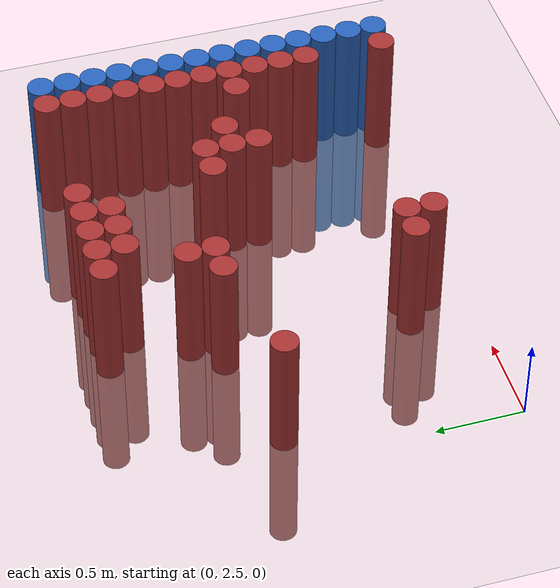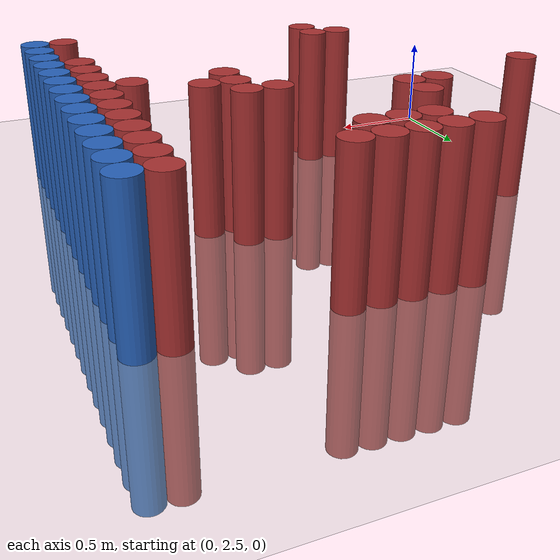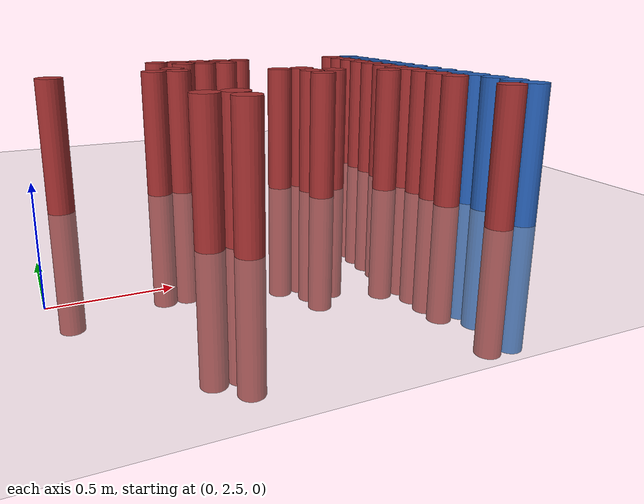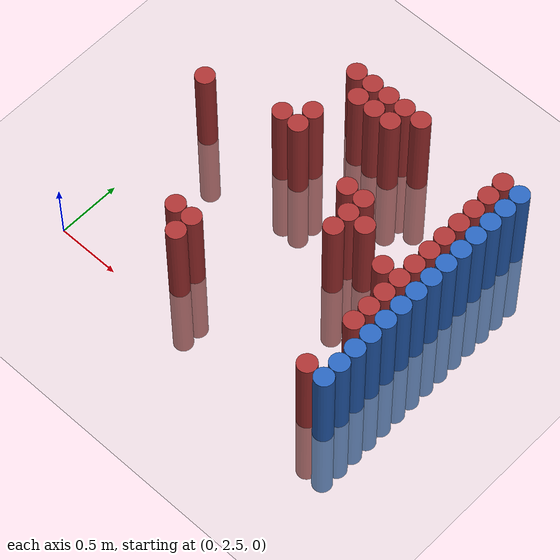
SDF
<sdf version="1.6">
 <world name="default">
  <model name="ground_plane">
   <static>1</static>
   <link name="link">
    <collision name="collision">
     <geometry><plane><normal>0 0 1</normal><size>100 100</size></plane></geometry>
     <surface><friction><ode><mu>100</mu><mu2>50</mu2></ode></friction></surface>
    </collision>
    <visual name="visual">
     <cast_shadows>0</cast_shadows>
     <geometry><plane><normal>0 0 1</normal><size>100 100</size></plane></geometry>
     <material>
      <script><uri>file://media/materials/scripts/gazebo.material</uri><name>Gazebo/Grey</name></script>
     </material>
    </visual>
   </link>
  </model>
  <model name="unit_cylinder_161">
   <static>1</static>
   <pose>0.175000 3.775000 0.000000 0.000000 0.000000 0.000000</pose>
   <link name="link">
    <inertial>
     <mass>1</mass>
     <inertia><ixx>0.145833</ixx><ixy>0</ixy><ixz>0</ixz><iyy>0.145833</iyy><iyz>0</iyz><izz>0.125</izz></inertia>
    </inertial>
    <collision name="collision">
     <geometry><cylinder><radius>0.075000</radius><length>1.5</length></cylinder></geometry>
    </collision>
    <visual name="visual">
     <geometry><cylinder><radius>0.075000</radius><length>1.5</length></cylinder></geometry>
     <material>
      <ambient>0.648000 0.192000 0.192000 1</ambient>
      <diffuse>0.648000 0.192000 0.192000 1</diffuse>
     </material>
     <material>
      <script><name>Gazebo/Grey</name><uri>file://media/materials/scripts/gazebo.material</uri></script>
     </material>
    </visual>
   </link>
  </model>
  <model name="unit_cylinder_177">
   <static>1</static>
   <pose>0.775000 2.875000 0.000000 0.000000 0.000000 0.000000</pose>
   <link name="link">
    <inertial>
     <mass>1</mass>
     <inertia><ixx>0.145833</ixx><ixy>0</ixy><ixz>0</ixz><iyy>0.145833</iyy><iyz>0</iyz><izz>0.125</izz></inertia>
    </inertial>
    <collision name="collision">
     <geometry><cylinder><radius>0.075000</radius><length>1.5</length></cylinder></geometry>
    </collision>
    <visual name="visual">
     <geometry><cylinder><radius>0.075000</radius><length>1.5</length></cylinder></geometry>
     <material>
      <ambient>0.648000 0.192000 0.192000 1</ambient>
      <diffuse>0.648000 0.192000 0.192000 1</diffuse>
     </material>
     <material>
      <script><name>Gazebo/Grey</name><uri>file://media/materials/scripts/gazebo.material</uri></script>
     </material>
    </visual>
   </link>
  </model>
  <model name="unit_cylinder_178">
   <static>1</static>
   <pose>0.775000 3.925000 0.000000 0.000000 0.000000 0.000000</pose>
   <link name="link">
    <inertial>
     <mass>1</mass>
     <inertia><ixx>0.145833</ixx><ixy>0</ixy><ixz>0</ixz><iyy>0.145833</iyy><iyz>0</iyz><izz>0.125</izz></inertia>
    </inertial>
    <collision name="collision">
     <geometry><cylinder><radius>0.075000</radius><length>1.5</length></cylinder></geometry>
    </collision>
    <visual name="visual">
     <geometry><cylinder><radius>0.075000</radius><length>1.5</length></cylinder></geometry>
     <material>
      <ambient>0.648000 0.192000 0.192000 1</ambient>
      <diffuse>0.648000 0.192000 0.192000 1</diffuse>
     </material>
     <material>
      <script><name>Gazebo/Grey</name><uri>file://media/materials/scripts/gazebo.material</uri></script>
     </material>
    </visual>
   </link>
  </model>
  <model name="unit_cylinder_180">
   <static>1</static>
   <pose>0.925000 2.725000 0.000000 0.000000 0.000000 0.000000</pose>
   <link name="link">
    <inertial>
     <mass>1</mass>
     <inertia><ixx>0.145833</ixx><ixy>0</ixy><ixz>0</ixz><iyy>0.145833</iyy><iyz>0</iyz><izz>0.125</izz></inertia>
    </inertial>
    <collision name="collision">
     <geometry><cylinder><radius>0.075000</radius><length>1.5</length></cylinder></geometry>
    </collision>
    <visual name="visual">
     <geometry><cylinder><radius>0.075000</radius><length>1.5</length></cylinder></geometry>
     <material>
      <ambient>0.648000 0.192000 0.192000 1</ambient>
      <diffuse>0.648000 0.192000 0.192000 1</diffuse>
     </material>
     <material>
      <script><name>Gazebo/Grey</name><uri>file://media/materials/scripts/gazebo.material</uri></script>
     </material>
    </visual>
   </link>
  </model>
  <model name="unit_cylinder_181">
   <static>1</static>
   <pose>0.925000 2.875000 0.000000 0.000000 0.000000 0.000000</pose>
   <link name="link">
    <inertial>
     <mass>1</mass>
     <inertia><ixx>0.145833</ixx><ixy>0</ixy><ixz>0</ixz><iyy>0.145833</iyy><iyz>0</iyz><izz>0.125</izz></inertia>
    </inertial>
    <collision name="collision">
     <geometry><cylinder><radius>0.075000</radius><length>1.5</length></cylinder></geometry>
    </collision>
    <visual name="visual">
     <geometry><cylinder><radius>0.075000</radius><length>1.5</length></cylinder></geometry>
     <material>
      <ambient>0.648000 0.192000 0.192000 1</ambient>
      <diffuse>0.648000 0.192000 0.192000 1</diffuse>
     </material>
     <material>
      <script><name>Gazebo/Grey</name><uri>file://media/materials/scripts/gazebo.material</uri></script>
     </material>
    </visual>
   </link>
  </model>
  <model name="unit_cylinder_182">
   <static>1</static>
   <pose>0.925000 3.925000 0.000000 0.000000 0.000000 0.000000</pose>
   <link name="link">
    <inertial>
     <mass>1</mass>
     <inertia><ixx>0.145833</ixx><ixy>0</ixy><ixz>0</ixz><iyy>0.145833</iyy><iyz>0</iyz><izz>0.125</izz></inertia>
    </inertial>
    <collision name="collision">
     <geometry><cylinder><radius>0.075000</radius><length>1.5</length></cylinder></geometry>
    </collision>
    <visual name="visual">
     <geometry><cylinder><radius>0.075000</radius><length>1.5</length></cylinder></geometry>
     <material>
      <ambient>0.648000 0.192000 0.192000 1</ambient>
      <diffuse>0.648000 0.192000 0.192000 1</diffuse>
     </material>
     <material>
      <script><name>Gazebo/Grey</name><uri>file://media/materials/scripts/gazebo.material</uri></script>
     </material>
    </visual>
   </link>
  </model>
  <model name="unit_cylinder_183">
   <static>1</static>
   <pose>0.925000 4.075000 0.000000 0.000000 0.000000 0.000000</pose>
   <link name="link">
    <inertial>
     <mass>1</mass>
     <inertia><ixx>0.145833</ixx><ixy>0</ixy><ixz>0</ixz><iyy>0.145833</iyy><iyz>0</iyz><izz>0.125</izz></inertia>
    </inertial>
    <collision name="collision">
     <geometry><cylinder><radius>0.075000</radius><length>1.5</length></cylinder></geometry>
    </collision>
    <visual name="visual">
     <geometry><cylinder><radius>0.075000</radius><length>1.5</length></cylinder></geometry>
     <material>
      <ambient>0.648000 0.192000 0.192000 1</ambient>
      <diffuse>0.648000 0.192000 0.192000 1</diffuse>
     </material>
     <material>
      <script><name>Gazebo/Grey</name><uri>file://media/materials/scripts/gazebo.material</uri></script>
     </material>
    </visual>
   </link>
  </model>
  <model name="unit_cylinder_184">
   <static>1</static>
   <pose>0.925000 4.525000 0.000000 0.000000 0.000000 0.000000</pose>
   <link name="link">
    <inertial>
     <mass>1</mass>
     <inertia><ixx>0.145833</ixx><ixy>0</ixy><ixz>0</ixz><iyy>0.145833</iyy><iyz>0</iyz><izz>0.125</izz></inertia>
    </inertial>
    <collision name="collision">
     <geometry><cylinder><radius>0.075000</radius><length>1.5</length></cylinder></geometry>
    </collision>
    <visual name="visual">
     <geometry><cylinder><radius>0.075000</radius><length>1.5</length></cylinder></geometry>
     <material>
      <ambient>0.648000 0.192000 0.192000 1</ambient>
      <diffuse>0.648000 0.192000 0.192000 1</diffuse>
     </material>
     <material>
      <script><name>Gazebo/Grey</name><uri>file://media/materials/scripts/gazebo.material</uri></script>
     </material>
    </visual>
   </link>
  </model>
  <model name="unit_cylinder_185">
   <static>1</static>
   <pose>1.075000 4.375000 0.000000 0.000000 0.000000 0.000000</pose>
   <link name="link">
    <inertial>
     <mass>1</mass>
     <inertia><ixx>0.145833</ixx><ixy>0</ixy><ixz>0</ixz><iyy>0.145833</iyy><iyz>0</iyz><izz>0.125</izz></inertia>
    </inertial>
    <collision name="collision">
     <geometry><cylinder><radius>0.075000</radius><length>1.5</length></cylinder></geometry>
    </collision>
    <visual name="visual">
     <geometry><cylinder><radius>0.075000</radius><length>1.5</length></cylinder></geometry>
     <material>
      <ambient>0.648000 0.192000 0.192000 1</ambient>
      <diffuse>0.648000 0.192000 0.192000 1</diffuse>
     </material>
     <material>
      <script><name>Gazebo/Grey</name><uri>file://media/materials/scripts/gazebo.material</uri></script>
     </material>
    </visual>
   </link>
  </model>
  <model name="unit_cylinder_186">
   <static>1</static>
   <pose>1.075000 4.525000 0.000000 0.000000 0.000000 0.000000</pose>
   <link name="link">
    <inertial>
     <mass>1</mass>
     <inertia><ixx>0.145833</ixx><ixy>0</ixy><ixz>0</ixz><iyy>0.145833</iyy><iyz>0</iyz><izz>0.125</izz></inertia>
    </inertial>
    <collision name="collision">
     <geometry><cylinder><radius>0.075000</radius><length>1.5</length></cylinder></geometry>
    </collision>
    <visual name="visual">
     <geometry><cylinder><radius>0.075000</radius><length>1.5</length></cylinder></geometry>
     <material>
      <ambient>0.648000 0.192000 0.192000 1</ambient>
      <diffuse>0.648000 0.192000 0.192000 1</diffuse>
     </material>
     <material>
      <script><name>Gazebo/Grey</name><uri>file://media/materials/scripts/gazebo.material</uri></script>
     </material>
    </visual>
   </link>
  </model>
  <model name="unit_cylinder_187">
   <static>1</static>
   <pose>1.225000 4.375000 0.000000 0.000000 0.000000 0.000000</pose>
   <link name="link">
    <inertial>
     <mass>1</mass>
     <inertia><ixx>0.145833</ixx><ixy>0</ixy><ixz>0</ixz><iyy>0.145833</iyy><iyz>0</iyz><izz>0.125</izz></inertia>
    </inertial>
    <collision name="collision">
     <geometry><cylinder><radius>0.075000</radius><length>1.5</length></cylinder></geometry>
    </collision>
    <visual name="visual">
     <geometry><cylinder><radius>0.075000</radius><length>1.5</length></cylinder></geometry>
     <material>
      <ambient>0.648000 0.192000 0.192000 1</ambient>
      <diffuse>0.648000 0.192000 0.192000 1</diffuse>
     </material>
     <material>
      <script><name>Gazebo/Grey</name><uri>file://media/materials/scripts/gazebo.material</uri></script>
     </material>
    </visual>
   </link>
  </model>
  <model name="unit_cylinder_188">
   <static>1</static>
   <pose>1.225000 4.525000 0.000000 0.000000 0.000000 0.000000</pose>
   <link name="link">
    <inertial>
     <mass>1</mass>
     <inertia><ixx>0.145833</ixx><ixy>0</ixy><ixz>0</ixz><iyy>0.145833</iyy><iyz>0</iyz><izz>0.125</izz></inertia>
    </inertial>
    <collision name="collision">
     <geometry><cylinder><radius>0.075000</radius><length>1.5</length></cylinder></geometry>
    </collision>
    <visual name="visual">
     <geometry><cylinder><radius>0.075000</radius><length>1.5</length></cylinder></geometry>
     <material>
      <ambient>0.648000 0.192000 0.192000 1</ambient>
      <diffuse>0.648000 0.192000 0.192000 1</diffuse>
     </material>
     <material>
      <script><name>Gazebo/Grey</name><uri>file://media/materials/scripts/gazebo.material</uri></script>
     </material>
    </visual>
   </link>
  </model>
  <model name="unit_cylinder_189">
   <static>1</static>
   <pose>1.375000 4.375000 0.000000 0.000000 0.000000 0.000000</pose>
   <link name="link">
    <inertial>
     <mass>1</mass>
     <inertia><ixx>0.145833</ixx><ixy>0</ixy><ixz>0</ixz><iyy>0.145833</iyy><iyz>0</iyz><izz>0.125</izz></inertia>
    </inertial>
    <collision name="collision">
     <geometry><cylinder><radius>0.075000</radius><length>1.5</length></cylinder></geometry>
    </collision>
    <visual name="visual">
     <geometry><cylinder><radius>0.075000</radius><length>1.5</length></cylinder></geometry>
     <material>
      <ambient>0.648000 0.192000 0.192000 1</ambient>
      <diffuse>0.648000 0.192000 0.192000 1</diffuse>
     </material>
     <material>
      <script><name>Gazebo/Grey</name><uri>file://media/materials/scripts/gazebo.material</uri></script>
     </material>
    </visual>
   </link>
  </model>
  <model name="unit_cylinder_190">
   <static>1</static>
   <pose>1.375000 4.525000 0.000000 0.000000 0.000000 0.000000</pose>
   <link name="link">
    <inertial>
     <mass>1</mass>
     <inertia><ixx>0.145833</ixx><ixy>0</ixy><ixz>0</ixz><iyy>0.145833</iyy><iyz>0</iyz><izz>0.125</izz></inertia>
    </inertial>
    <collision name="collision">
     <geometry><cylinder><radius>0.075000</radius><length>1.5</length></cylinder></geometry>
    </collision>
    <visual name="visual">
     <geometry><cylinder><radius>0.075000</radius><length>1.5</length></cylinder></geometry>
     <material>
      <ambient>0.648000 0.192000 0.192000 1</ambient>
      <diffuse>0.648000 0.192000 0.192000 1</diffuse>
     </material>
     <material>
      <script><name>Gazebo/Grey</name><uri>file://media/materials/scripts/gazebo.material</uri></script>
     </material>
    </visual>
   </link>
  </model>
  <model name="unit_cylinder_192">
   <static>1</static>
   <pose>1.525000 3.775000 0.000000 0.000000 0.000000 0.000000</pose>
   <link name="link">
    <inertial>
     <mass>1</mass>
     <inertia><ixx>0.145833</ixx><ixy>0</ixy><ixz>0</ixz><iyy>0.145833</iyy><iyz>0</iyz><izz>0.125</izz></inertia>
    </inertial>
    <collision name="collision">
     <geometry><cylinder><radius>0.075000</radius><length>1.5</length></cylinder></geometry>
    </collision>
    <visual name="visual">
     <geometry><cylinder><radius>0.075000</radius><length>1.5</length></cylinder></geometry>
     <material>
      <ambient>0.648000 0.192000 0.192000 1</ambient>
      <diffuse>0.648000 0.192000 0.192000 1</diffuse>
     </material>
     <material>
      <script><name>Gazebo/Grey</name><uri>file://media/materials/scripts/gazebo.material</uri></script>
     </material>
    </visual>
   </link>
  </model>
  <model name="unit_cylinder_193">
   <static>1</static>
   <pose>1.525000 4.525000 0.000000 0.000000 0.000000 0.000000</pose>
   <link name="link">
    <inertial>
     <mass>1</mass>
     <inertia><ixx>0.145833</ixx><ixy>0</ixy><ixz>0</ixz><iyy>0.145833</iyy><iyz>0</iyz><izz>0.125</izz></inertia>
    </inertial>
    <collision name="collision">
     <geometry><cylinder><radius>0.075000</radius><length>1.5</length></cylinder></geometry>
    </collision>
    <visual name="visual">
     <geometry><cylinder><radius>0.075000</radius><length>1.5</length></cylinder></geometry>
     <material>
      <ambient>0.648000 0.192000 0.192000 1</ambient>
      <diffuse>0.648000 0.192000 0.192000 1</diffuse>
     </material>
     <material>
      <script><name>Gazebo/Grey</name><uri>file://media/materials/scripts/gazebo.material</uri></script>
     </material>
    </visual>
   </link>
  </model>
  <model name="unit_cylinder_199">
   <static>1</static>
   <pose>1.675000 3.475000 0.000000 0.000000 0.000000 0.000000</pose>
   <link name="link">
    <inertial>
     <mass>1</mass>
     <inertia><ixx>0.145833</ixx><ixy>0</ixy><ixz>0</ixz><iyy>0.145833</iyy><iyz>0</iyz><izz>0.125</izz></inertia>
    </inertial>
    <collision name="collision">
     <geometry><cylinder><radius>0.075000</radius><length>1.5</length></cylinder></geometry>
    </collision>
    <visual name="visual">
     <geometry><cylinder><radius>0.075000</radius><length>1.5</length></cylinder></geometry>
     <material>
      <ambient>0.648000 0.192000 0.192000 1</ambient>
      <diffuse>0.648000 0.192000 0.192000 1</diffuse>
     </material>
     <material>
      <script><name>Gazebo/Grey</name><uri>file://media/materials/scripts/gazebo.material</uri></script>
     </material>
    </visual>
   </link>
  </model>
  <model name="unit_cylinder_200">
   <static>1</static>
   <pose>1.675000 3.625000 0.000000 0.000000 0.000000 0.000000</pose>
   <link name="link">
    <inertial>
     <mass>1</mass>
     <inertia><ixx>0.145833</ixx><ixy>0</ixy><ixz>0</ixz><iyy>0.145833</iyy><iyz>0</iyz><izz>0.125</izz></inertia>
    </inertial>
    <collision name="collision">
     <geometry><cylinder><radius>0.075000</radius><length>1.5</length></cylinder></geometry>
    </collision>
    <visual name="visual">
     <geometry><cylinder><radius>0.075000</radius><length>1.5</length></cylinder></geometry>
     <material>
      <ambient>0.648000 0.192000 0.192000 1</ambient>
      <diffuse>0.648000 0.192000 0.192000 1</diffuse>
     </material>
     <material>
      <script><name>Gazebo/Grey</name><uri>file://media/materials/scripts/gazebo.material</uri></script>
     </material>
    </visual>
   </link>
  </model>
  <model name="unit_cylinder_201">
   <static>1</static>
   <pose>1.675000 3.775000 0.000000 0.000000 0.000000 0.000000</pose>
   <link name="link">
    <inertial>
     <mass>1</mass>
     <inertia><ixx>0.145833</ixx><ixy>0</ixy><ixz>0</ixz><iyy>0.145833</iyy><iyz>0</iyz><izz>0.125</izz></inertia>
    </inertial>
    <collision name="collision">
     <geometry><cylinder><radius>0.075000</radius><length>1.5</length></cylinder></geometry>
    </collision>
    <visual name="visual">
     <geometry><cylinder><radius>0.075000</radius><length>1.5</length></cylinder></geometry>
     <material>
      <ambient>0.648000 0.192000 0.192000 1</ambient>
      <diffuse>0.648000 0.192000 0.192000 1</diffuse>
     </material>
     <material>
      <script><name>Gazebo/Grey</name><uri>file://media/materials/scripts/gazebo.material</uri></script>
     </material>
    </visual>
   </link>
  </model>
  <model name="unit_cylinder_211">
   <static>1</static>
   <pose>1.825000 3.625000 0.000000 0.000000 0.000000 0.000000</pose>
   <link name="link">
    <inertial>
     <mass>1</mass>
     <inertia><ixx>0.145833</ixx><ixy>0</ixy><ixz>0</ixz><iyy>0.145833</iyy><iyz>0</iyz><izz>0.125</izz></inertia>
    </inertial>
    <collision name="collision">
     <geometry><cylinder><radius>0.075000</radius><length>1.5</length></cylinder></geometry>
    </collision>
    <visual name="visual">
     <geometry><cylinder><radius>0.075000</radius><length>1.5</length></cylinder></geometry>
     <material>
      <ambient>0.648000 0.192000 0.192000 1</ambient>
      <diffuse>0.648000 0.192000 0.192000 1</diffuse>
     </material>
     <material>
      <script><name>Gazebo/Grey</name><uri>file://media/materials/scripts/gazebo.material</uri></script>
     </material>
    </visual>
   </link>
  </model>
  <model name="unit_cylinder_226">
   <static>1</static>
   <pose>2.125000 3.475000 0.000000 0.000000 0.000000 0.000000</pose>
   <link name="link">
    <inertial>
     <mass>1</mass>
     <inertia><ixx>0.145833</ixx><ixy>0</ixy><ixz>0</ixz><iyy>0.145833</iyy><iyz>0</iyz><izz>0.125</izz></inertia>
    </inertial>
    <collision name="collision">
     <geometry><cylinder><radius>0.075000</radius><length>1.5</length></cylinder></geometry>
    </collision>
    <visual name="visual">
     <geometry><cylinder><radius>0.075000</radius><length>1.5</length></cylinder></geometry>
     <material>
      <ambient>0.648000 0.192000 0.192000 1</ambient>
      <diffuse>0.648000 0.192000 0.192000 1</diffuse>
     </material>
     <material>
      <script><name>Gazebo/Grey</name><uri>file://media/materials/scripts/gazebo.material</uri></script>
     </material>
    </visual>
   </link>
  </model>
  <model name="unit_cylinder_236">
   <static>1</static>
   <pose>2.275000 2.575000 0.000000 0.000000 0.000000 0.000000</pose>
   <link name="link">
    <inertial>
     <mass>1</mass>
     <inertia><ixx>0.145833</ixx><ixy>0</ixy><ixz>0</ixz><iyy>0.145833</iyy><iyz>0</iyz><izz>0.125</izz></inertia>
    </inertial>
    <collision name="collision">
     <geometry><cylinder><radius>0.075000</radius><length>1.5</length></cylinder></geometry>
    </collision>
    <visual name="visual">
     <geometry><cylinder><radius>0.075000</radius><length>1.5</length></cylinder></geometry>
     <material>
      <ambient>0.648000 0.192000 0.192000 1</ambient>
      <diffuse>0.648000 0.192000 0.192000 1</diffuse>
     </material>
     <material>
      <script><name>Gazebo/Grey</name><uri>file://media/materials/scripts/gazebo.material</uri></script>
     </material>
    </visual>
   </link>
  </model>
  <model name="unit_cylinder_237">
   <static>1</static>
   <pose>2.275000 3.025000 0.000000 0.000000 0.000000 0.000000</pose>
   <link name="link">
    <inertial>
     <mass>1</mass>
     <inertia><ixx>0.145833</ixx><ixy>0</ixy><ixz>0</ixz><iyy>0.145833</iyy><iyz>0</iyz><izz>0.125</izz></inertia>
    </inertial>
    <collision name="collision">
     <geometry><cylinder><radius>0.075000</radius><length>1.5</length></cylinder></geometry>
    </collision>
    <visual name="visual">
     <geometry><cylinder><radius>0.075000</radius><length>1.5</length></cylinder></geometry>
     <material>
      <ambient>0.648000 0.192000 0.192000 1</ambient>
      <diffuse>0.648000 0.192000 0.192000 1</diffuse>
     </material>
     <material>
      <script><name>Gazebo/Grey</name><uri>file://media/materials/scripts/gazebo.material</uri></script>
     </material>
    </visual>
   </link>
  </model>
  <model name="unit_cylinder_238">
   <static>1</static>
   <pose>2.275000 3.175000 0.000000 0.000000 0.000000 0.000000</pose>
   <link name="link">
    <inertial>
     <mass>1</mass>
     <inertia><ixx>0.145833</ixx><ixy>0</ixy><ixz>0</ixz><iyy>0.145833</iyy><iyz>0</iyz><izz>0.125</izz></inertia>
    </inertial>
    <collision name="collision">
     <geometry><cylinder><radius>0.075000</radius><length>1.5</length></cylinder></geometry>
    </collision>
    <visual name="visual">
     <geometry><cylinder><radius>0.075000</radius><length>1.5</length></cylinder></geometry>
     <material>
      <ambient>0.648000 0.192000 0.192000 1</ambient>
      <diffuse>0.648000 0.192000 0.192000 1</diffuse>
     </material>
     <material>
      <script><name>Gazebo/Grey</name><uri>file://media/materials/scripts/gazebo.material</uri></script>
     </material>
    </visual>
   </link>
  </model>
  <model name="unit_cylinder_239">
   <static>1</static>
   <pose>2.275000 3.325000 0.000000 0.000000 0.000000 0.000000</pose>
   <link name="link">
    <inertial>
     <mass>1</mass>
     <inertia><ixx>0.145833</ixx><ixy>0</ixy><ixz>0</ixz><iyy>0.145833</iyy><iyz>0</iyz><izz>0.125</izz></inertia>
    </inertial>
    <collision name="collision">
     <geometry><cylinder><radius>0.075000</radius><length>1.5</length></cylinder></geometry>
    </collision>
    <visual name="visual">
     <geometry><cylinder><radius>0.075000</radius><length>1.5</length></cylinder></geometry>
     <material>
      <ambient>0.648000 0.192000 0.192000 1</ambient>
      <diffuse>0.648000 0.192000 0.192000 1</diffuse>
     </material>
     <material>
      <script><name>Gazebo/Grey</name><uri>file://media/materials/scripts/gazebo.material</uri></script>
     </material>
    </visual>
   </link>
  </model>
  <model name="unit_cylinder_240">
   <static>1</static>
   <pose>2.275000 3.475000 0.000000 0.000000 0.000000 0.000000</pose>
   <link name="link">
    <inertial>
     <mass>1</mass>
     <inertia><ixx>0.145833</ixx><ixy>0</ixy><ixz>0</ixz><iyy>0.145833</iyy><iyz>0</iyz><izz>0.125</izz></inertia>
    </inertial>
    <collision name="collision">
     <geometry><cylinder><radius>0.075000</radius><length>1.5</length></cylinder></geometry>
    </collision>
    <visual name="visual">
     <geometry><cylinder><radius>0.075000</radius><length>1.5</length></cylinder></geometry>
     <material>
      <ambient>0.648000 0.192000 0.192000 1</ambient>
      <diffuse>0.648000 0.192000 0.192000 1</diffuse>
     </material>
     <material>
      <script><name>Gazebo/Grey</name><uri>file://media/materials/scripts/gazebo.material</uri></script>
     </material>
    </visual>
   </link>
  </model>
  <model name="unit_cylinder_241">
   <static>1</static>
   <pose>2.275000 3.625000 0.000000 0.000000 0.000000 0.000000</pose>
   <link name="link">
    <inertial>
     <mass>1</mass>
     <inertia><ixx>0.145833</ixx><ixy>0</ixy><ixz>0</ixz><iyy>0.145833</iyy><iyz>0</iyz><izz>0.125</izz></inertia>
    </inertial>
    <collision name="collision">
     <geometry><cylinder><radius>0.075000</radius><length>1.5</length></cylinder></geometry>
    </collision>
    <visual name="visual">
     <geometry><cylinder><radius>0.075000</radius><length>1.5</length></cylinder></geometry>
     <material>
      <ambient>0.648000 0.192000 0.192000 1</ambient>
      <diffuse>0.648000 0.192000 0.192000 1</diffuse>
     </material>
     <material>
      <script><name>Gazebo/Grey</name><uri>file://media/materials/scripts/gazebo.material</uri></script>
     </material>
    </visual>
   </link>
  </model>
  <model name="unit_cylinder_242">
   <static>1</static>
   <pose>2.275000 3.775000 0.000000 0.000000 0.000000 0.000000</pose>
   <link name="link">
    <inertial>
     <mass>1</mass>
     <inertia><ixx>0.145833</ixx><ixy>0</ixy><ixz>0</ixz><iyy>0.145833</iyy><iyz>0</iyz><izz>0.125</izz></inertia>
    </inertial>
    <collision name="collision">
     <geometry><cylinder><radius>0.075000</radius><length>1.5</length></cylinder></geometry>
    </collision>
    <visual name="visual">
     <geometry><cylinder><radius>0.075000</radius><length>1.5</length></cylinder></geometry>
     <material>
      <ambient>0.648000 0.192000 0.192000 1</ambient>
      <diffuse>0.648000 0.192000 0.192000 1</diffuse>
     </material>
     <material>
      <script><name>Gazebo/Grey</name><uri>file://media/materials/scripts/gazebo.material</uri></script>
     </material>
    </visual>
   </link>
  </model>
  <model name="unit_cylinder_243">
   <static>1</static>
   <pose>2.275000 3.925000 0.000000 0.000000 0.000000 0.000000</pose>
   <link name="link">
    <inertial>
     <mass>1</mass>
     <inertia><ixx>0.145833</ixx><ixy>0</ixy><ixz>0</ixz><iyy>0.145833</iyy><iyz>0</iyz><izz>0.125</izz></inertia>
    </inertial>
    <collision name="collision">
     <geometry><cylinder><radius>0.075000</radius><length>1.5</length></cylinder></geometry>
    </collision>
    <visual name="visual">
     <geometry><cylinder><radius>0.075000</radius><length>1.5</length></cylinder></geometry>
     <material>
      <ambient>0.648000 0.192000 0.192000 1</ambient>
      <diffuse>0.648000 0.192000 0.192000 1</diffuse>
     </material>
     <material>
      <script><name>Gazebo/Grey</name><uri>file://media/materials/scripts/gazebo.material</uri></script>
     </material>
    </visual>
   </link>
  </model>
  <model name="unit_cylinder_244">
   <static>1</static>
   <pose>2.275000 4.075000 0.000000 0.000000 0.000000 0.000000</pose>
   <link name="link">
    <inertial>
     <mass>1</mass>
     <inertia><ixx>0.145833</ixx><ixy>0</ixy><ixz>0</ixz><iyy>0.145833</iyy><iyz>0</iyz><izz>0.125</izz></inertia>
    </inertial>
    <collision name="collision">
     <geometry><cylinder><radius>0.075000</radius><length>1.5</length></cylinder></geometry>
    </collision>
    <visual name="visual">
     <geometry><cylinder><radius>0.075000</radius><length>1.5</length></cylinder></geometry>
     <material>
      <ambient>0.648000 0.192000 0.192000 1</ambient>
      <diffuse>0.648000 0.192000 0.192000 1</diffuse>
     </material>
     <material>
      <script><name>Gazebo/Grey</name><uri>file://media/materials/scripts/gazebo.material</uri></script>
     </material>
    </visual>
   </link>
  </model>
  <model name="unit_cylinder_245">
   <static>1</static>
   <pose>2.275000 4.225000 0.000000 0.000000 0.000000 0.000000</pose>
   <link name="link">
    <inertial>
     <mass>1</mass>
     <inertia><ixx>0.145833</ixx><ixy>0</ixy><ixz>0</ixz><iyy>0.145833</iyy><iyz>0</iyz><izz>0.125</izz></inertia>
    </inertial>
    <collision name="collision">
     <geometry><cylinder><radius>0.075000</radius><length>1.5</length></cylinder></geometry>
    </collision>
    <visual name="visual">
     <geometry><cylinder><radius>0.075000</radius><length>1.5</length></cylinder></geometry>
     <material>
      <ambient>0.648000 0.192000 0.192000 1</ambient>
      <diffuse>0.648000 0.192000 0.192000 1</diffuse>
     </material>
     <material>
      <script><name>Gazebo/Grey</name><uri>file://media/materials/scripts/gazebo.material</uri></script>
     </material>
    </visual>
   </link>
  </model>
  <model name="unit_cylinder_246">
   <static>1</static>
   <pose>2.275000 4.375000 0.000000 0.000000 0.000000 0.000000</pose>
   <link name="link">
    <inertial>
     <mass>1</mass>
     <inertia><ixx>0.145833</ixx><ixy>0</ixy><ixz>0</ixz><iyy>0.145833</iyy><iyz>0</iyz><izz>0.125</izz></inertia>
    </inertial>
    <collision name="collision">
     <geometry><cylinder><radius>0.075000</radius><length>1.5</length></cylinder></geometry>
    </collision>
    <visual name="visual">
     <geometry><cylinder><radius>0.075000</radius><length>1.5</length></cylinder></geometry>
     <material>
      <ambient>0.648000 0.192000 0.192000 1</ambient>
      <diffuse>0.648000 0.192000 0.192000 1</diffuse>
     </material>
     <material>
      <script><name>Gazebo/Grey</name><uri>file://media/materials/scripts/gazebo.material</uri></script>
     </material>
    </visual>
   </link>
  </model>
  <model name="unit_cylinder_247">
   <static>1</static>
   <pose>2.275000 4.525000 0.000000 0.000000 0.000000 0.000000</pose>
   <link name="link">
    <inertial>
     <mass>1</mass>
     <inertia><ixx>0.145833</ixx><ixy>0</ixy><ixz>0</ixz><iyy>0.145833</iyy><iyz>0</iyz><izz>0.125</izz></inertia>
    </inertial>
    <collision name="collision">
     <geometry><cylinder><radius>0.075000</radius><length>1.5</length></cylinder></geometry>
    </collision>
    <visual name="visual">
     <geometry><cylinder><radius>0.075000</radius><length>1.5</length></cylinder></geometry>
     <material>
      <ambient>0.648000 0.192000 0.192000 1</ambient>
      <diffuse>0.648000 0.192000 0.192000 1</diffuse>
     </material>
     <material>
      <script><name>Gazebo/Grey</name><uri>file://media/materials/scripts/gazebo.material</uri></script>
     </material>
    </visual>
   </link>
  </model>
  <model name="unit_cylinder_264">
   <static>1</static>
   <pose>2.425000 2.575000 0.000000 0.000000 0.000000 0.000000</pose>
   <link name="link">
    <inertial>
     <mass>1</mass>
     <inertia><ixx>0.145833</ixx><ixy>0</ixy><ixz>0</ixz><iyy>0.145833</iyy><iyz>0</iyz><izz>0.125</izz></inertia>
    </inertial>
    <collision name="collision">
     <geometry><cylinder><radius>0.075000</radius><length>1.5</length></cylinder></geometry>
    </collision>
    <visual name="visual">
     <geometry><cylinder><radius>0.075000</radius><length>1.5</length></cylinder></geometry>
     <material>
      <ambient>0.152000 0.379000 0.720000 1</ambient>
      <diffuse>0.152000 0.379000 0.720000 1</diffuse>
     </material>
     <material>
      <script><name>Gazebo/Grey</name><uri>file://media/materials/scripts/gazebo.material</uri></script>
     </material>
    </visual>
   </link>
  </model>
  <model name="unit_cylinder_265">
   <static>1</static>
   <pose>2.425000 2.725000 0.000000 0.000000 0.000000 0.000000</pose>
   <link name="link">
    <inertial>
     <mass>1</mass>
     <inertia><ixx>0.145833</ixx><ixy>0</ixy><ixz>0</ixz><iyy>0.145833</iyy><iyz>0</iyz><izz>0.125</izz></inertia>
    </inertial>
    <collision name="collision">
     <geometry><cylinder><radius>0.075000</radius><length>1.5</length></cylinder></geometry>
    </collision>
    <visual name="visual">
     <geometry><cylinder><radius>0.075000</radius><length>1.5</length></cylinder></geometry>
     <material>
      <ambient>0.152000 0.379000 0.720000 1</ambient>
      <diffuse>0.152000 0.379000 0.720000 1</diffuse>
     </material>
     <material>
      <script><name>Gazebo/Grey</name><uri>file://media/materials/scripts/gazebo.material</uri></script>
     </material>
    </visual>
   </link>
  </model>
  <model name="unit_cylinder_266">
   <static>1</static>
   <pose>2.425000 2.875000 0.000000 0.000000 0.000000 0.000000</pose>
   <link name="link">
    <inertial>
     <mass>1</mass>
     <inertia><ixx>0.145833</ixx><ixy>0</ixy><ixz>0</ixz><iyy>0.145833</iyy><iyz>0</iyz><izz>0.125</izz></inertia>
    </inertial>
    <collision name="collision">
     <geometry><cylinder><radius>0.075000</radius><length>1.5</length></cylinder></geometry>
    </collision>
    <visual name="visual">
     <geometry><cylinder><radius>0.075000</radius><length>1.5</length></cylinder></geometry>
     <material>
      <ambient>0.152000 0.379000 0.720000 1</ambient>
      <diffuse>0.152000 0.379000 0.720000 1</diffuse>
     </material>
     <material>
      <script><name>Gazebo/Grey</name><uri>file://media/materials/scripts/gazebo.material</uri></script>
     </material>
    </visual>
   </link>
  </model>
  <model name="unit_cylinder_267">
   <static>1</static>
   <pose>2.425000 3.025000 0.000000 0.000000 0.000000 0.000000</pose>
   <link name="link">
    <inertial>
     <mass>1</mass>
     <inertia><ixx>0.145833</ixx><ixy>0</ixy><ixz>0</ixz><iyy>0.145833</iyy><iyz>0</iyz><izz>0.125</izz></inertia>
    </inertial>
    <collision name="collision">
     <geometry><cylinder><radius>0.075000</radius><length>1.5</length></cylinder></geometry>
    </collision>
    <visual name="visual">
     <geometry><cylinder><radius>0.075000</radius><length>1.5</length></cylinder></geometry>
     <material>
      <ambient>0.152000 0.379000 0.720000 1</ambient>
      <diffuse>0.152000 0.379000 0.720000 1</diffuse>
     </material>
     <material>
      <script><name>Gazebo/Grey</name><uri>file://media/materials/scripts/gazebo.material</uri></script>
     </material>
    </visual>
   </link>
  </model>
  <model name="unit_cylinder_268">
   <static>1</static>
   <pose>2.425000 3.175000 0.000000 0.000000 0.000000 0.000000</pose>
   <link name="link">
    <inertial>
     <mass>1</mass>
     <inertia><ixx>0.145833</ixx><ixy>0</ixy><ixz>0</ixz><iyy>0.145833</iyy><iyz>0</iyz><izz>0.125</izz></inertia>
    </inertial>
    <collision name="collision">
     <geometry><cylinder><radius>0.075000</radius><length>1.5</length></cylinder></geometry>
    </collision>
    <visual name="visual">
     <geometry><cylinder><radius>0.075000</radius><length>1.5</length></cylinder></geometry>
     <material>
      <ambient>0.152000 0.379000 0.720000 1</ambient>
      <diffuse>0.152000 0.379000 0.720000 1</diffuse>
     </material>
     <material>
      <script><name>Gazebo/Grey</name><uri>file://media/materials/scripts/gazebo.material</uri></script>
     </material>
    </visual>
   </link>
  </model>
  <model name="unit_cylinder_269">
   <static>1</static>
   <pose>2.425000 3.325000 0.000000 0.000000 0.000000 0.000000</pose>
   <link name="link">
    <inertial>
     <mass>1</mass>
     <inertia><ixx>0.145833</ixx><ixy>0</ixy><ixz>0</ixz><iyy>0.145833</iyy><iyz>0</iyz><izz>0.125</izz></inertia>
    </inertial>
    <collision name="collision">
     <geometry><cylinder><radius>0.075000</radius><length>1.5</length></cylinder></geometry>
    </collision>
    <visual name="visual">
     <geometry><cylinder><radius>0.075000</radius><length>1.5</length></cylinder></geometry>
     <material>
      <ambient>0.152000 0.379000 0.720000 1</ambient>
      <diffuse>0.152000 0.379000 0.720000 1</diffuse>
     </material>
     <material>
      <script><name>Gazebo/Grey</name><uri>file://media/materials/scripts/gazebo.material</uri></script>
     </material>
    </visual>
   </link>
  </model>
  <model name="unit_cylinder_270">
   <static>1</static>
   <pose>2.425000 3.475000 0.000000 0.000000 0.000000 0.000000</pose>
   <link name="link">
    <inertial>
     <mass>1</mass>
     <inertia><ixx>0.145833</ixx><ixy>0</ixy><ixz>0</ixz><iyy>0.145833</iyy><iyz>0</iyz><izz>0.125</izz></inertia>
    </inertial>
    <collision name="collision">
     <geometry><cylinder><radius>0.075000</radius><length>1.5</length></cylinder></geometry>
    </collision>
    <visual name="visual">
     <geometry><cylinder><radius>0.075000</radius><length>1.5</length></cylinder></geometry>
     <material>
      <ambient>0.152000 0.379000 0.720000 1</ambient>
      <diffuse>0.152000 0.379000 0.720000 1</diffuse>
     </material>
     <material>
      <script><name>Gazebo/Grey</name><uri>file://media/materials/scripts/gazebo.material</uri></script>
     </material>
    </visual>
   </link>
  </model>
  <model name="unit_cylinder_271">
   <static>1</static>
   <pose>2.425000 3.625000 0.000000 0.000000 0.000000 0.000000</pose>
   <link name="link">
    <inertial>
     <mass>1</mass>
     <inertia><ixx>0.145833</ixx><ixy>0</ixy><ixz>0</ixz><iyy>0.145833</iyy><iyz>0</iyz><izz>0.125</izz></inertia>
    </inertial>
    <collision name="collision">
     <geometry><cylinder><radius>0.075000</radius><length>1.5</length></cylinder></geometry>
    </collision>
    <visual name="visual">
     <geometry><cylinder><radius>0.075000</radius><length>1.5</length></cylinder></geometry>
     <material>
      <ambient>0.152000 0.379000 0.720000 1</ambient>
      <diffuse>0.152000 0.379000 0.720000 1</diffuse>
     </material>
     <material>
      <script><name>Gazebo/Grey</name><uri>file://media/materials/scripts/gazebo.material</uri></script>
     </material>
    </visual>
   </link>
  </model>
  <model name="unit_cylinder_272">
   <static>1</static>
   <pose>2.425000 3.775000 0.000000 0.000000 0.000000 0.000000</pose>
   <link name="link">
    <inertial>
     <mass>1</mass>
     <inertia><ixx>0.145833</ixx><ixy>0</ixy><ixz>0</ixz><iyy>0.145833</iyy><iyz>0</iyz><izz>0.125</izz></inertia>
    </inertial>
    <collision name="collision">
     <geometry><cylinder><radius>0.075000</radius><length>1.5</length></cylinder></geometry>
    </collision>
    <visual name="visual">
     <geometry><cylinder><radius>0.075000</radius><length>1.5</length></cylinder></geometry>
     <material>
      <ambient>0.152000 0.379000 0.720000 1</ambient>
      <diffuse>0.152000 0.379000 0.720000 1</diffuse>
     </material>
     <material>
      <script><name>Gazebo/Grey</name><uri>file://media/materials/scripts/gazebo.material</uri></script>
     </material>
    </visual>
   </link>
  </model>
  <model name="unit_cylinder_273">
   <static>1</static>
   <pose>2.425000 3.925000 0.000000 0.000000 0.000000 0.000000</pose>
   <link name="link">
    <inertial>
     <mass>1</mass>
     <inertia><ixx>0.145833</ixx><ixy>0</ixy><ixz>0</ixz><iyy>0.145833</iyy><iyz>0</iyz><izz>0.125</izz></inertia>
    </inertial>
    <collision name="collision">
     <geometry><cylinder><radius>0.075000</radius><length>1.5</length></cylinder></geometry>
    </collision>
    <visual name="visual">
     <geometry><cylinder><radius>0.075000</radius><length>1.5</length></cylinder></geometry>
     <material>
      <ambient>0.152000 0.379000 0.720000 1</ambient>
      <diffuse>0.152000 0.379000 0.720000 1</diffuse>
     </material>
     <material>
      <script><name>Gazebo/Grey</name><uri>file://media/materials/scripts/gazebo.material</uri></script>
     </material>
    </visual>
   </link>
  </model>
  <model name="unit_cylinder_274">
   <static>1</static>
   <pose>2.425000 4.075000 0.000000 0.000000 0.000000 0.000000</pose>
   <link name="link">
    <inertial>
     <mass>1</mass>
     <inertia><ixx>0.145833</ixx><ixy>0</ixy><ixz>0</ixz><iyy>0.145833</iyy><iyz>0</iyz><izz>0.125</izz></inertia>
    </inertial>
    <collision name="collision">
     <geometry><cylinder><radius>0.075000</radius><length>1.5</length></cylinder></geometry>
    </collision>
    <visual name="visual">
     <geometry><cylinder><radius>0.075000</radius><length>1.5</length></cylinder></geometry>
     <material>
      <ambient>0.152000 0.379000 0.720000 1</ambient>
      <diffuse>0.152000 0.379000 0.720000 1</diffuse>
     </material>
     <material>
      <script><name>Gazebo/Grey</name><uri>file://media/materials/scripts/gazebo.material</uri></script>
     </material>
    </visual>
   </link>
  </model>
  <model name="unit_cylinder_275">
   <static>1</static>
   <pose>2.425000 4.225000 0.000000 0.000000 0.000000 0.000000</pose>
   <link name="link">
    <inertial>
     <mass>1</mass>
     <inertia><ixx>0.145833</ixx><ixy>0</ixy><ixz>0</ixz><iyy>0.145833</iyy><iyz>0</iyz><izz>0.125</izz></inertia>
    </inertial>
    <collision name="collision">
     <geometry><cylinder><radius>0.075000</radius><length>1.5</length></cylinder></geometry>
    </collision>
    <visual name="visual">
     <geometry><cylinder><radius>0.075000</radius><length>1.5</length></cylinder></geometry>
     <material>
      <ambient>0.152000 0.379000 0.720000 1</ambient>
      <diffuse>0.152000 0.379000 0.720000 1</diffuse>
     </material>
     <material>
      <script><name>Gazebo/Grey</name><uri>file://media/materials/scripts/gazebo.material</uri></script>
     </material>
    </visual>
   </link>
  </model>
  <model name="unit_cylinder_276">
   <static>1</static>
   <pose>2.425000 4.375000 0.000000 0.000000 0.000000 0.000000</pose>
   <link name="link">
    <inertial>
     <mass>1</mass>
     <inertia><ixx>0.145833</ixx><ixy>0</ixy><ixz>0</ixz><iyy>0.145833</iyy><iyz>0</iyz><izz>0.125</izz></inertia>
    </inertial>
    <collision name="collision">
     <geometry><cylinder><radius>0.075000</radius><length>1.5</length></cylinder></geometry>
    </collision>
    <visual name="visual">
     <geometry><cylinder><radius>0.075000</radius><length>1.5</length></cylinder></geometry>
     <material>
      <ambient>0.152000 0.379000 0.720000 1</ambient>
      <diffuse>0.152000 0.379000 0.720000 1</diffuse>
     </material>
     <material>
      <script><name>Gazebo/Grey</name><uri>file://media/materials/scripts/gazebo.material</uri></script>
     </material>
    </visual>
   </link>
  </model>
  <model name="unit_cylinder_277">
   <static>1</static>
   <pose>2.425000 4.525000 0.000000 0.000000 0.000000 0.000000</pose>
   <link name="link">
    <inertial>
     <mass>1</mass>
     <inertia><ixx>0.145833</ixx><ixy>0</ixy><ixz>0</ixz><iyy>0.145833</iyy><iyz>0</iyz><izz>0.125</izz></inertia>
    </inertial>
    <collision name="collision">
     <geometry><cylinder><radius>0.075000</radius><length>1.5</length></cylinder></geometry>
    </collision>
    <visual name="visual">
     <geometry><cylinder><radius>0.075000</radius><length>1.5</length></cylinder></geometry>
     <material>
      <ambient>0.152000 0.379000 0.720000 1</ambient>
      <diffuse>0.152000 0.379000 0.720000 1</diffuse>
     </material>
     <material>
      <script><name>Gazebo/Grey</name><uri>file://media/materials/scripts/gazebo.material</uri></script>
     </material>
    </visual>
   </link>
  </model>
 </world>
</sdf>
